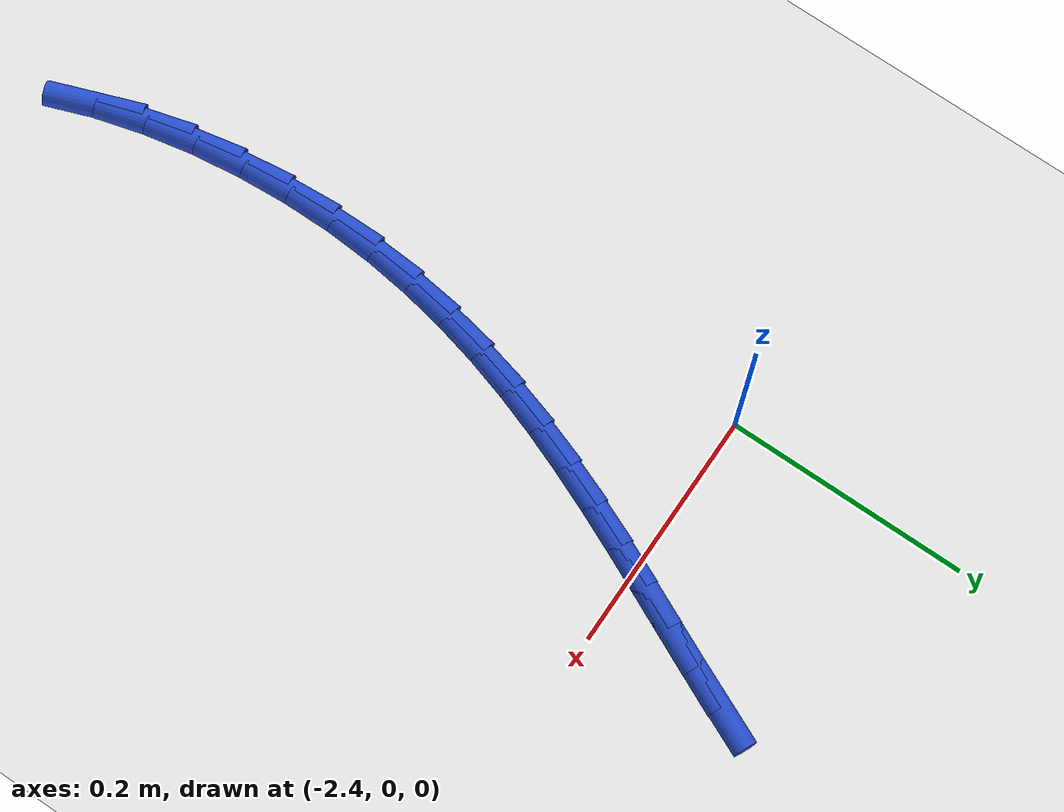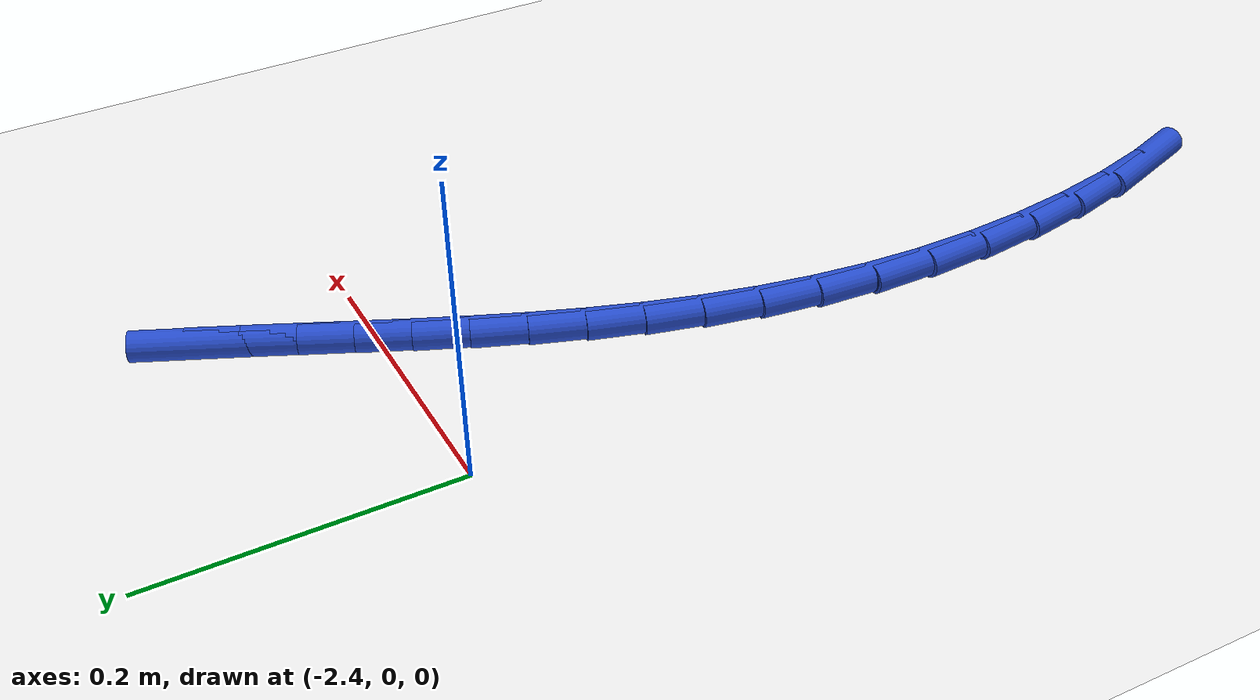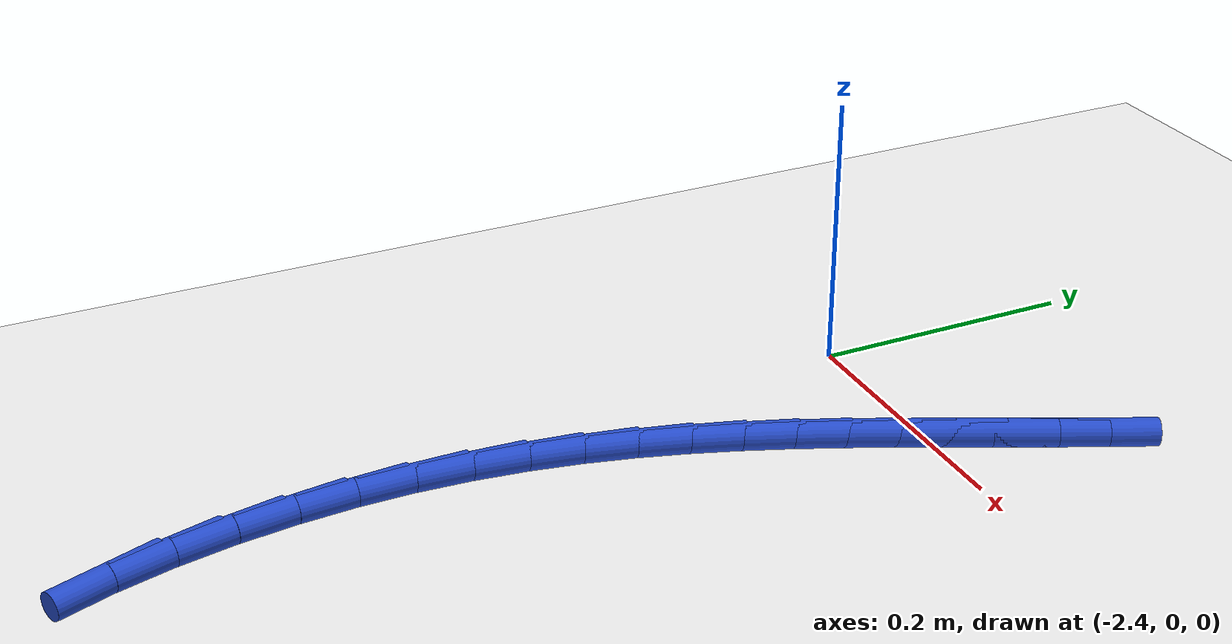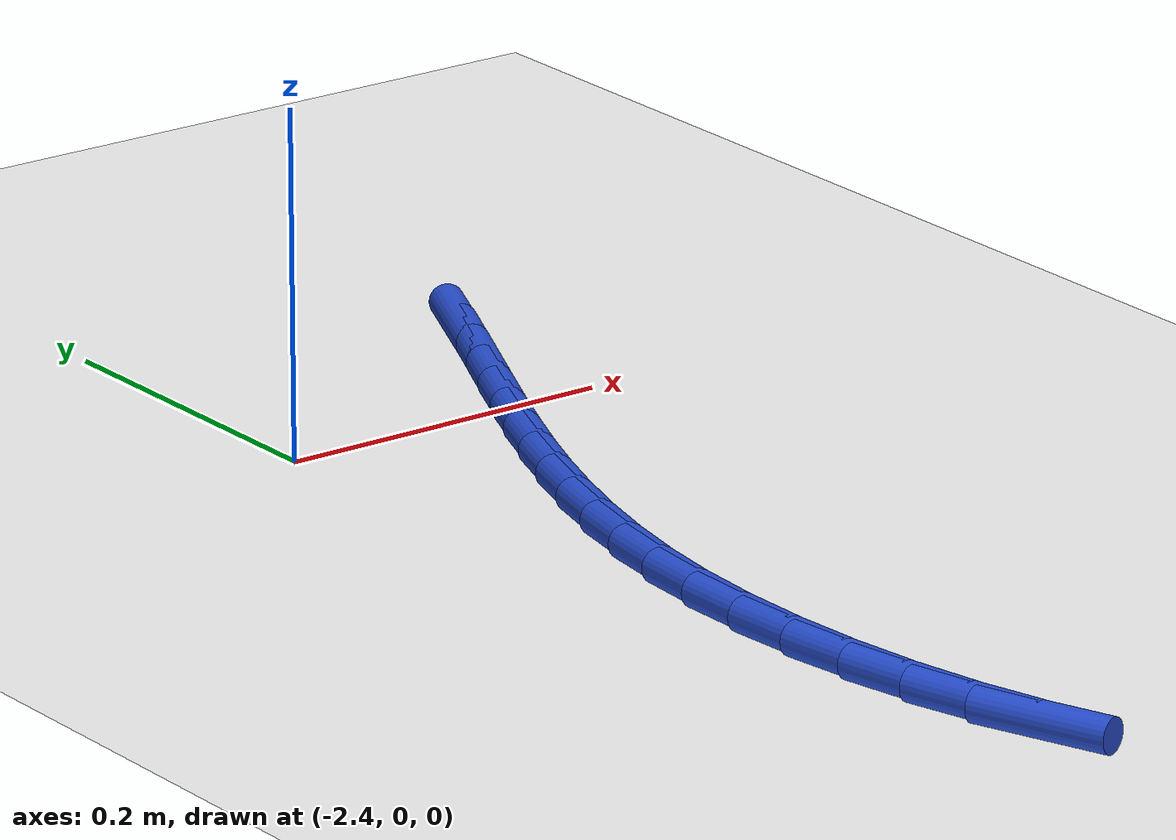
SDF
<sdf version="1.6">
 <world name="default">
  <model name="ground_plane">
   <static>1</static>
   <link name="link">
    <collision name="collision">
     <geometry><plane><normal>0 0 1</normal><size>100 100</size></plane></geometry>
     <surface><friction><ode><mu>100</mu><mu2>50</mu2></ode></friction></surface>
    </collision>
    <visual name="visual">
     <cast_shadows>0</cast_shadows>
     <geometry><plane><normal>0 0 1</normal><size>100 100</size></plane></geometry>
     <material>
      <script><uri>file://media/materials/scripts/gazebo.material</uri><name>Gazebo/WhiteGlow</name></script>
     </material>
    </visual>
   </link>
  </model>
  <model name="line">
   <link name="link_116">
    <pose>-2.212544459712346 0.10516700172542662 0.01 0 1.57 1.1444660131384101</pose>
    <collision name="collision">
     <geometry><cylinder><radius>0.01</radius><length>0.08</length></cylinder></geometry>
    </collision>
    <visual name="visual">
     <material>
      <script><name>Gazebo/Blue</name><uri>file://media/materials/scripts/gazebo.material</uri></script>
     </material>
     <geometry><cylinder><radius>0.01</radius><length>0.08</length></cylinder></geometry>
    </visual>
   </link>
   <link name="link_117">
    <pose>-2.2268397160023157 0.07369261183652911 0.01 0 1.57 1.1329329891480344</pose>
    <collision name="collision">
     <geometry><cylinder><radius>0.01</radius><length>0.08</length></cylinder></geometry>
    </collision>
    <visual name="visual">
     <material>
      <script><name>Gazebo/Blue</name><uri>file://media/materials/scripts/gazebo.material</uri></script>
     </material>
     <geometry><cylinder><radius>0.01</radius><length>0.08</length></cylinder></geometry>
    </visual>
   </link>
   <link name="link_118">
    <pose>-2.2415923007684033 0.042181638137549105 0.01 0 1.57 1.1297986985114277</pose>
    <collision name="collision">
     <geometry><cylinder><radius>0.01</radius><length>0.08</length></cylinder></geometry>
    </collision>
    <visual name="visual">
     <material>
      <script><name>Gazebo/Blue</name><uri>file://media/materials/scripts/gazebo.material</uri></script>
     </material>
     <geometry><cylinder><radius>0.01</radius><length>0.08</length></cylinder></geometry>
    </visual>
   </link>
   <link name="link_119">
    <pose>-2.2565411967313516 0.010510237467139964 0.01 0 1.57 1.1349006656887768</pose>
    <collision name="collision">
     <geometry><cylinder><radius>0.01</radius><length>0.08</length></cylinder></geometry>
    </collision>
    <visual name="visual">
     <material>
      <script><name>Gazebo/Blue</name><uri>file://media/materials/scripts/gazebo.material</uri></script>
     </material>
     <geometry><cylinder><radius>0.01</radius><length>0.08</length></cylinder></geometry>
    </visual>
   </link>
   <link name="link_120">
    <pose>-2.2714253866119005 -0.021445433336044113 0.01 0 1.57 1.1480769583443888</pose>
    <collision name="collision">
     <geometry><cylinder><radius>0.01</radius><length>0.08</length></cylinder></geometry>
    </collision>
    <visual name="visual">
     <material>
      <script><name>Gazebo/Blue</name><uri>file://media/materials/scripts/gazebo.material</uri></script>
     </material>
     <geometry><cylinder><radius>0.01</radius><length>0.08</length></cylinder></geometry>
    </visual>
   </link>
   <link name="link_121">
    <pose>-2.2859838531307917 -0.053809217433348995 0.01 0 1.57 1.1691565059623379</pose>
    <collision name="collision">
     <geometry><cylinder><radius>0.01</radius><length>0.08</length></cylinder></geometry>
    </collision>
    <visual name="visual">
     <material>
      <script><name>Gazebo/Blue</name><uri>file://media/materials/scripts/gazebo.material</uri></script>
     </material>
     <geometry><cylinder><radius>0.01</radius><length>0.08</length></cylinder></geometry>
    </visual>
   </link>
   <link name="link_122">
    <pose>-2.299955579008766 -0.08670495798612138 0.01 0 1.57 1.1979351484344691</pose>
    <collision name="collision">
     <geometry><cylinder><radius>0.01</radius><length>0.08</length></cylinder></geometry>
    </collision>
    <visual name="visual">
     <material>
      <script><name>Gazebo/Blue</name><uri>file://media/materials/scripts/gazebo.material</uri></script>
     </material>
     <geometry><cylinder><radius>0.01</radius><length>0.08</length></cylinder></geometry>
    </visual>
   </link>
   <link name="link_123">
    <pose>-2.313079546966565 -0.1202564981557055 0.01 0 1.57 1.2341402240362545</pose>
    <collision name="collision">
     <geometry><cylinder><radius>0.01</radius><length>0.08</length></cylinder></geometry>
    </collision>
    <visual name="visual">
     <material>
      <script><name>Gazebo/Blue</name><uri>file://media/materials/scripts/gazebo.material</uri></script>
     </material>
     <geometry><cylinder><radius>0.01</radius><length>0.08</length></cylinder></geometry>
    </visual>
   </link>
   <link name="link_124">
    <pose>-2.325094739724929 -0.1545876811034479 0.01 0 1.57 1.2773878576450963</pose>
    <collision name="collision">
     <geometry><cylinder><radius>0.01</radius><length>0.08</length></cylinder></geometry>
    </collision>
    <visual name="visual">
     <material>
      <script><name>Gazebo/Blue</name><uri>file://media/materials/scripts/gazebo.material</uri></script>
     </material>
     <geometry><cylinder><radius>0.01</radius><length>0.08</length></cylinder></geometry>
    </visual>
   </link>
   <link name="link_125">
    <pose>-2.335740140004599 -0.18982234999069453 0.01 0 1.57 1.3271394368031209</pose>
    <collision name="collision">
     <geometry><cylinder><radius>0.01</radius><length>0.08</length></cylinder></geometry>
    </collision>
    <visual name="visual">
     <material>
      <script><name>Gazebo/Blue</name><uri>file://media/materials/scripts/gazebo.material</uri></script>
     </material>
     <geometry><cylinder><radius>0.01</radius><length>0.08</length></cylinder></geometry>
    </visual>
   </link>
   <link name="link_126">
    <pose>-2.3447547305263168 -0.22608434797879215 0.01 0 1.57 1.3826665075553128</pose>
    <collision name="collision">
     <geometry><cylinder><radius>0.01</radius><length>0.08</length></cylinder></geometry>
    </collision>
    <visual name="visual">
     <material>
      <script><name>Gazebo/Blue</name><uri>file://media/materials/scripts/gazebo.material</uri></script>
     </material>
     <geometry><cylinder><radius>0.01</radius><length>0.08</length></cylinder></geometry>
    </visual>
   </link>
   <link name="link_127">
    <pose>-2.3518774940108234 -0.26349751822908485 0.01 0 1.57 1.4430351405005402</pose>
    <collision name="collision">
     <geometry><cylinder><radius>0.01</radius><length>0.08</length></cylinder></geometry>
    </collision>
    <visual name="visual">
     <material>
      <script><name>Gazebo/Blue</name><uri>file://media/materials/scripts/gazebo.material</uri></script>
     </material>
     <geometry><cylinder><radius>0.01</radius><length>0.08</length></cylinder></geometry>
    </visual>
   </link>
   <link name="link_128">
    <pose>-2.3568474131788584 -0.3021857039029191 0.01 0 1.57 1.5071198445828906</pose>
    <collision name="collision">
     <geometry><cylinder><radius>0.01</radius><length>0.08</length></cylinder></geometry>
    </collision>
    <visual name="visual">
     <material>
      <script><name>Gazebo/Blue</name><uri>file://media/materials/scripts/gazebo.material</uri></script>
     </material>
     <geometry><cylinder><radius>0.01</radius><length>0.08</length></cylinder></geometry>
    </visual>
   </link>
   <link name="link_129">
    <pose>-2.359403470751166 -0.3422727481616411 0.01 0 1.57 -1.5687353236245272</pose>
    <collision name="collision">
     <geometry><cylinder><radius>0.01</radius><length>0.08</length></cylinder></geometry>
    </collision>
    <visual name="visual">
     <material>
      <script><name>Gazebo/Blue</name><uri>file://media/materials/scripts/gazebo.material</uri></script>
     </material>
     <geometry><cylinder><radius>0.01</radius><length>0.08</length></cylinder></geometry>
    </visual>
   </link>
   <link name="link_130">
    <pose>-2.359317966992837 -0.38375916530677356 0.01 0 1.57 -1.5047260576878971</pose>
    <collision name="collision">
     <geometry><cylinder><radius>0.01</radius><length>0.08</length></cylinder></geometry>
    </collision>
    <visual name="visual">
     <material>
      <script><name>Gazebo/Blue</name><uri>file://media/materials/scripts/gazebo.material</uri></script>
     </material>
     <geometry><cylinder><radius>0.01</radius><length>0.08</length></cylinder></geometry>
    </visual>
   </link>
   <link name="link_131">
    <pose>-2.3565183187914047 -0.426071286981524 0.01 0 1.57 -1.4408340396599344</pose>
    <collision name="collision">
     <geometry><cylinder><radius>0.01</radius><length>0.08</length></cylinder></geometry>
    </collision>
    <visual name="visual">
     <material>
      <script><name>Gazebo/Blue</name><uri>file://media/materials/scripts/gazebo.material</uri></script>
     </material>
     <geometry><cylinder><radius>0.01</radius><length>0.08</length></cylinder></geometry>
    </visual>
   </link>
   <link name="link_132">
    <pose>-2.350977050476375 -0.46846847425860527 0.01 0 1.57 -1.3742753470846967</pose>
    <collision name="collision">
     <geometry><cylinder><radius>0.01</radius><length>0.08</length></cylinder></geometry>
    </collision>
    <visual name="visual">
     <material>
      <script><name>Gazebo/Blue</name><uri>file://media/materials/scripts/gazebo.material</uri></script>
     </material>
     <geometry><cylinder><radius>0.01</radius><length>0.08</length></cylinder></geometry>
    </visual>
   </link>
   <link name="link_133">
    <pose>-2.342666691397679 -0.5102100696270199 0.01 0 1.57 -1.3021547604670998</pose>
    <collision name="collision">
     <geometry><cylinder><radius>0.01</radius><length>0.08</length></cylinder></geometry>
    </collision>
    <visual name="visual">
     <material>
      <script><name>Gazebo/Blue</name><uri>file://media/materials/scripts/gazebo.material</uri></script>
     </material>
     <geometry><cylinder><radius>0.01</radius><length>0.08</length></cylinder></geometry>
    </visual>
   </link>
   <link name="link_134">
    <pose>-2.331559770905252 -0.5505554155757689 0.01 0 1.57 -1.2211708952067921</pose>
    <collision name="collision">
     <geometry><cylinder><radius>0.01</radius><length>0.08</length></cylinder></geometry>
    </collision>
    <visual name="visual">
     <material>
      <script><name>Gazebo/Blue</name><uri>file://media/materials/scripts/gazebo.material</uri></script>
     </material>
     <geometry><cylinder><radius>0.01</radius><length>0.08</length></cylinder></geometry>
    </visual>
   </link>
  </model>
 </world>
</sdf>
